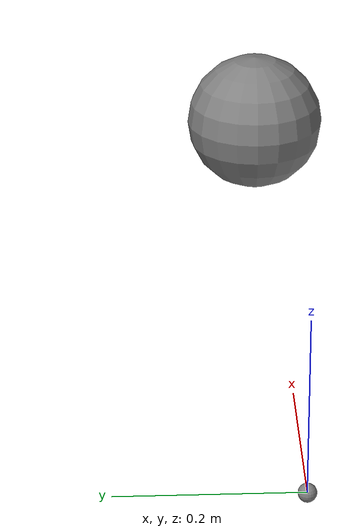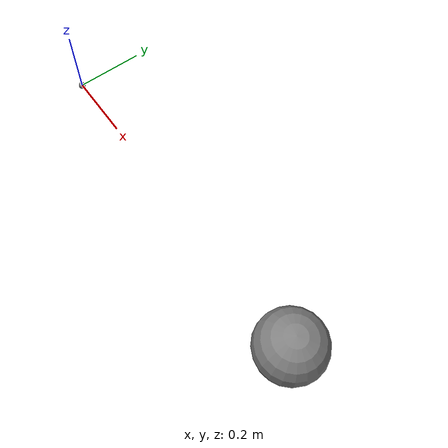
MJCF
<mujoco>
                <compiler angle="radian" boundmass="1.0" settotalmass="5.0"/>
                <worldbody>
                    <body name="a" pos="0 0 0">
                        <geom type="sphere" size="0.01" mass="0.1"/>
                    </body>
                    <body name="b" pos="1 0 0">
                        <geom type="sphere" size="0.1" mass="2.0"/>
                    </body>
                </worldbody>
            </mujoco>
